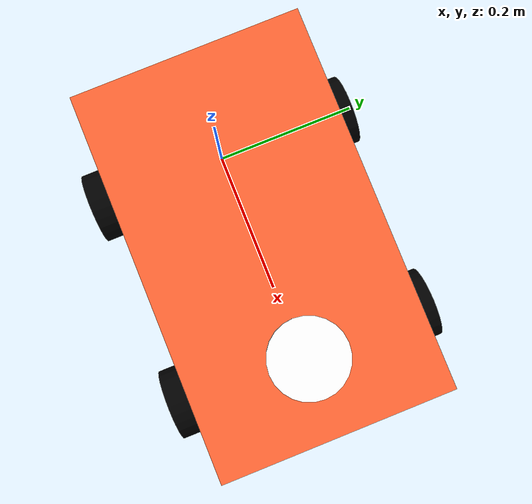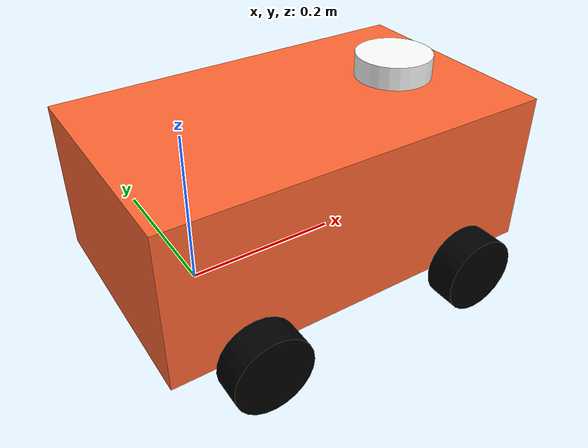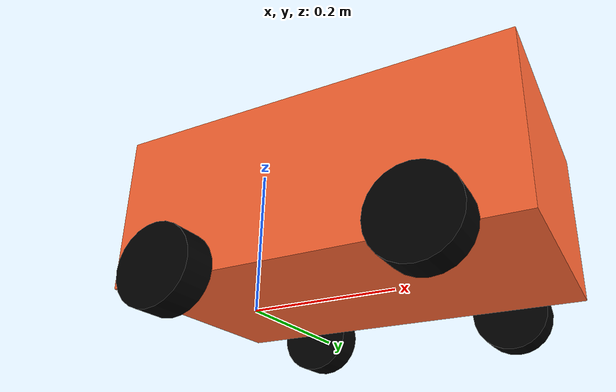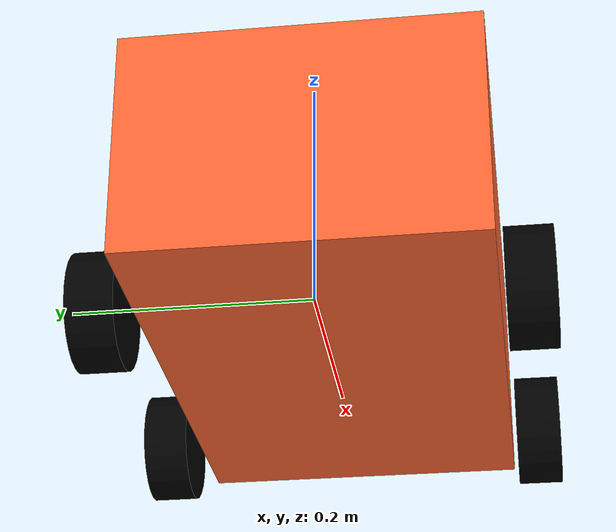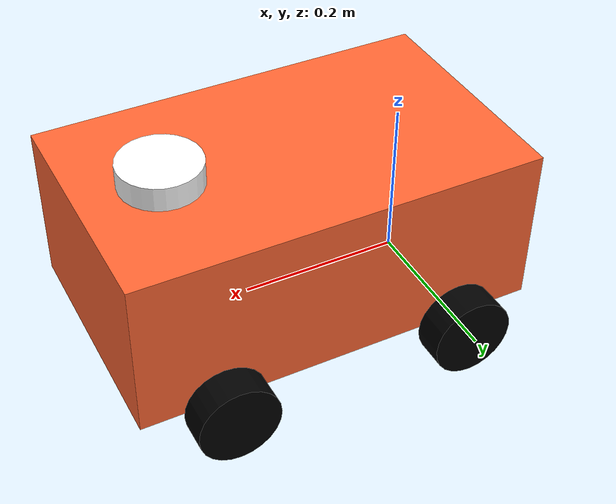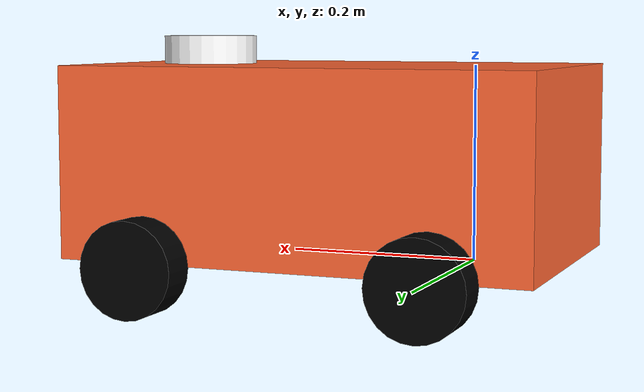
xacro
<?xml version="1.0"?>
<robot xmlns:xacro="http://www.ros.org/wiki/xacro" name="simulator">
<xacro:property name="controller_yaml_path" value="/home/panu/FSR_WS/src/FSR/config/controllers.yaml" />

    <!-- ================= INERTIAL MACROS ================= -->
    <xacro:macro name="inertial_sphere" params="mass radius origin_xyz origin_rpy">
        <inertial>
            <origin xyz="${origin_xyz}" rpy="${origin_rpy}"/>
            <mass value="${mass}" />
            <inertia ixx="${(2/5) * mass * (radius*radius)}" ixy="0.0" ixz="0.0"
                    iyy="${(2/5) * mass * (radius*radius)}" iyz="0.0"
                    izz="${(2/5) * mass * (radius*radius)}" />
        </inertial>
    </xacro:macro>

    <xacro:macro name="inertial_box" params="mass x y z origin_xyz origin_rpy">
        <inertial>
            <origin xyz="${origin_xyz}" rpy="${origin_rpy}"/>
            <mass value="${mass}" />
            <inertia ixx="${(1/12) * mass * (y*y+z*z)}" ixy="0.0" ixz="0.0"
                    iyy="${(1/12) * mass * (x*x+z*z)}" iyz="0.0"
                    izz="${(1/12) * mass * (x*x+y*y)}" />
        </inertial>
    </xacro:macro>

    <xacro:macro name="inertial_cylinder" params="mass length radius origin_xyz origin_rpy">
        <inertial>
            <origin xyz="${origin_xyz}" rpy="${origin_rpy}"/>
            <mass value="${mass}" />
            <inertia ixx="${(1/12) * mass * (3*radius*radius + length*length)}" ixy="0.0" ixz="0.0"
                    iyy="${(1/12) * mass * (3*radius*radius + length*length)}" iyz="0.0"
                    izz="${(1/2) * mass * (radius*radius)}" />
        </inertial>
    </xacro:macro>

    <material name="white">
        <color rgba="1 1 1 1"/>
    </material>

    <material name="blue">
        <color rgba="1 0.3 0.1 1"/>
    </material>

    <material name="blurrywood">
        <color rgba="1 0.4 0.2 1"/>
    </material>

    <material name="black">
        <color rgba="0 0 0 1"/>
    </material>

    <material name="orange">
        <color rgba="1 0.3 0.1 1"/>
    </material>

    <material name="red">
        <color rgba="1 0 0 1"/>
    </material>

    <!--BASE LINK-->
    <link name="base_link">
    </link>

    <!-- BASE FOOTPRINT -->
    <joint name="base_footprint_joint" type="fixed">
        <parent link="base_link"/>
        <child link="base_footprint"/>
        <origin xyz="0 0 0" rpy="0 0 0"/>
    </joint>

    <link name="base_footprint">
    </link>

    <!--CHASSIS LINK-->
    <joint name="chassis_joint" type="fixed">
        <parent link="base_link"/>
        <child link="chassis"/>
        <origin xyz="-0.1 0 0"/>
    </joint>

    <link name="chassis">
        <visual>
            <origin xyz="0.25 0 0.1" />
            <geometry>
                <box size="0.5 0.3 0.2" />
            </geometry>
            <material name="blurrywood" />
        </visual>
        <collision>
            <origin xyz="0.25 0 0.1" />
            <geometry>
                <box size="0.5 0.3 0.2" />
            </geometry>
        </collision>
        <xacro:inertial_box mass="0.5" x="0.5" y="0.3" z="0.2" origin_xyz="0.25 0 0.1" origin_rpy="0 0 0"/>
    </link>

    <gazebo reference="chassis">
        <material>Gazebo/Red</material>
    </gazebo>

    <!-- LEFT WHEEL LINK-->
    <joint name="left_wheel_joint" type="continuous">
        <parent link="base_link" />
        <child link="left_wheel" />
        <origin xyz="0 0.175 0" rpy="-${pi/2} 0 0" />
        <axis xyz="0 0 1"/>
    </joint>

    <link name="left_wheel">
        <visual>
            <geometry>
                <cylinder radius="0.05" length="0.04" />
            </geometry>
            <material name="black" />
        </visual>
        <collision>
            <geometry>
                <sphere radius="0.05" />
            </geometry>
        </collision>
        <xacro:inertial_cylinder mass="0.1" length="0.04" radius="0.05" origin_xyz="0 0 0" origin_rpy="0 0 0"/>
    </link>

    <gazebo reference="left_wheel">
        <material>Gazebo/Black</material>
    </gazebo>

    <!-- RIGHT WHEEL LINK-->
    <joint name="right_wheel_joint" type="continuous">
        <parent link="base_link" />
        <child link="right_wheel" />
        <origin xyz="0 -0.175 0" rpy="${pi/2} 0 0" />
        <axis xyz="0 0 -1"/>
    </joint>

    <link name="right_wheel">
        <visual>
            <geometry>
                <cylinder radius="0.05" length="0.04" />
            </geometry>
            <material name="black" />
        </visual>
        <collision>
            <geometry>
                <sphere radius="0.05" />
            </geometry>
        </collision>
        <xacro:inertial_cylinder mass="0.1" length="0.04" radius="0.05" origin_xyz="0 0 0" origin_rpy="0 0 0"/>
    </link>

    <gazebo reference="right_wheel">
        <material>Gazebo/Black</material>
    </gazebo>

    <!-- LEFT CASTER WHEEL -->
    <joint name="left_caster_wheel_joint" type="fixed">
        <parent link="chassis" />
        <child link="left_caster_wheel" />
        <origin xyz="0.4 0.175 0" rpy="-${pi/2} 0 0"/>
        <axis xyz="0 0 1"/>
    </joint>

    <link name="left_caster_wheel">
        <visual>
            <geometry>
                <cylinder radius="0.05" length="0.04"/>
            </geometry>
            <material name="black" />
        </visual>
        <collision>
            <geometry>
                <cylinder radius="0.05" length="0.04"/>
            </geometry>
        </collision>
        <xacro:inertial_cylinder mass="0.1" length="0.04" radius="0.05" origin_xyz="0 0 0" origin_rpy="0 0 0"/>
    </link>

    <gazebo reference="left_caster_wheel">
        <material>Gazebo/Black</material>
        <mu1 value="0.01" />
        <mu2 value="0.01" />
    </gazebo>

    <!-- RIGHT CASTER WHEEL -->
    <joint name="right_caster_wheel_joint" type="fixed">
        <parent link="chassis" />
        <child link="right_caster_wheel" />
        <origin xyz="0.4 -0.175 0" rpy="${pi/2} 0 0"/>
        <axis xyz="0 0 -1"/>
    </joint>

    <link name="right_caster_wheel">
        <visual>
            <geometry>
                <cylinder radius="0.05" length="0.04"/>
            </geometry>
            <material name="black" />
        </visual>
        <collision>
            <geometry>
                <cylinder radius="0.05" length="0.04"/>
            </geometry>
        </collision>
        <xacro:inertial_cylinder mass="0.1" length="0.04" radius="0.05" origin_xyz="0 0 0" origin_rpy="0 0 0"/>
    </link>

    <gazebo reference="right_caster_wheel">
        <material>Gazebo/Black</material>
        <mu1 value="0.01" />
        <mu2 value="0.01" />
    </gazebo>

    <!-- ================= LIDAR / LASER ================= -->
    <joint name="laser_joint" type="fixed">
        <parent link="base_link"/>
        <child link="laser_frame"/>
        <origin xyz="0.3 0 0.21" rpy="0 0 0"/>
    </joint>

    <link name="laser_frame">
        <visual>
            <geometry><cylinder radius="0.05" length="0.04"/></geometry>
            <material name="white"/>
        </visual>
        <collision>
            <geometry><cylinder radius="0.05" length="0.04"/></geometry>
        </collision>
        <xacro:inertial_cylinder mass="0.1" length="0.04" radius="0.05" origin_xyz="0 0 0" origin_rpy="0 0 0"/>
    </link>

    <gazebo reference="laser_frame">
        <material>Gazebo/White</material>
        <sensor name="laser" type="ray">
            <pose>0 0 0 0 0 0</pose>
            <visualize>true</visualize>
            <update_rate>10</update_rate>
            <ray>
                <scan>
                    <horizontal>
                        <samples>720</samples>
                        <min_angle>-3.14</min_angle>
                        <max_angle>3.14</max_angle>
                    </horizontal>
                </scan>
                <range>
                    <min>0.12</min>
                    <max>12.0</max>
                </range>
            </ray>
            <plugin name="scan" filename="libgazebo_ros_ray_sensor.so">
              <ros>
                <remapping>~/out:=/scan</remapping>
              </ros>
              <output_type>sensor_msgs/LaserScan</output_type>
              <frame_name>laser_frame</frame_name>
            </plugin>
        </sensor>
    </gazebo>

    <!-- ================= ROS2 CONTROL ================= -->
    <ros2_control name="GazeboSystem" type="system">
        <hardware>
            <plugin>gazebo_ros2_control/GazeboSystem</plugin>
        </hardware>
        <joint name="left_wheel_joint">
            <command_interface name="velocity">
                <param name="min">-10</param>
                <param name="max">10</param>
            </command_interface>
            <state_interface name="velocity"/>
            <state_interface name="position"/>
        </joint>
        <joint name="right_wheel_joint">
            <command_interface name="velocity">
                <param name="min">-10</param>
                <param name="max">10</param>
            </command_interface>
            <state_interface name="velocity"/>
            <state_interface name="position"/>
        </joint>
    </ros2_control>

    <gazebo>
        <plugin name="gazebo_ros2_control" filename="libgazebo_ros2_control.so">
            <parameters>${controller_yaml_path}</parameters>
        </plugin>
    </gazebo>

</robot>
